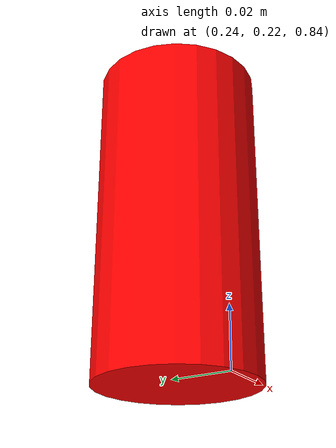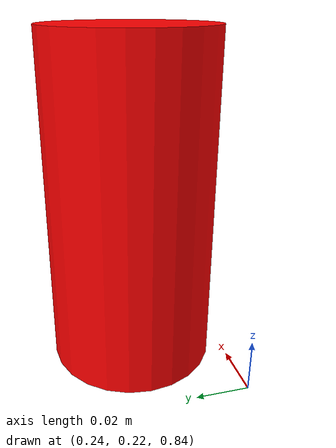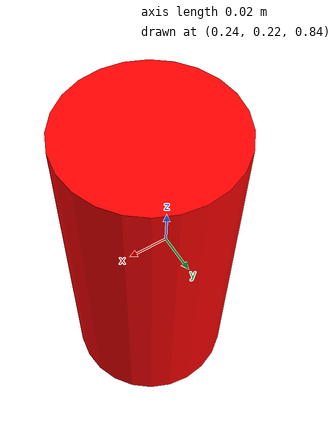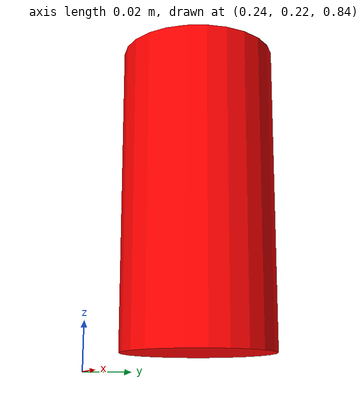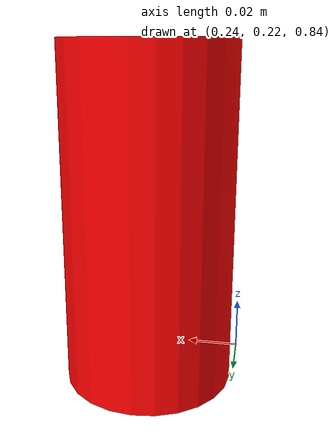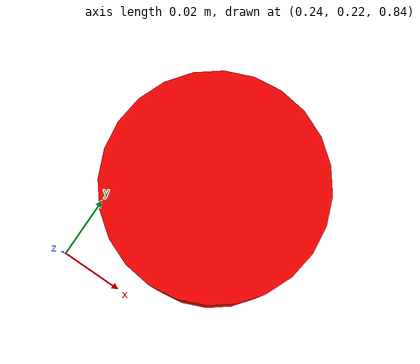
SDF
<?xml version='1.0'?>
<sdf version='1.7'>
  <model name='coke_can'>
    <pose>0.270909 0.256721 0.846173 0 0 0</pose>
    <static>false</static>

    <link name='link'>
      <inertial>
        <pose>0 0 0.06 0 0 0</pose>
        <mass>0.10</mass>  <!--Masa de la lata-->
        <inertia>
          <ixx>0.00055575</ixx>
          <ixy>0</ixy>
          <ixz>0</ixz>
          <iyy>0.00055575</iyy>
          <iyz>0</iyz>
          <izz>0.0001755</izz>
        </inertia>
      </inertial>

      <collision name='collision'>
        <pose>0 0 0.06 0 0 0</pose>
        <geometry>
          <cylinder>
            <radius>0.03</radius>
            <length>0.12</length>
          </cylinder>
        </geometry>
        <surface>
          <friction>
            <ode>
              <mu>20</mu>
              <mu2>20</mu2>
            </ode>
          </friction>
          <contact>
              <kp>1e+07</kp>
              <kd>1</kd>
              <min_depth>0.001</min_depth>
              <max_vel>0.1</max_vel>
          </contact>
        </surface>
        <max_contacts>10</max_contacts>
      </collision>

      <visual name='visual'>
        <pose>0 0 0.06 0 0 0</pose>
        <geometry>
          <cylinder>
            <radius>0.03</radius>
            <length>0.12</length>
          </cylinder>
        </geometry>
        <material>
          <ambient>1 0 0 1</ambient>
          <diffuse>1 0 0 1</diffuse>
        </material>
      </visual>
      <self_collide>false</self_collide>
      <enable_wind>false</enable_wind>
      <kinematic>false</kinematic>
    </link>
  </model>
</sdf>
